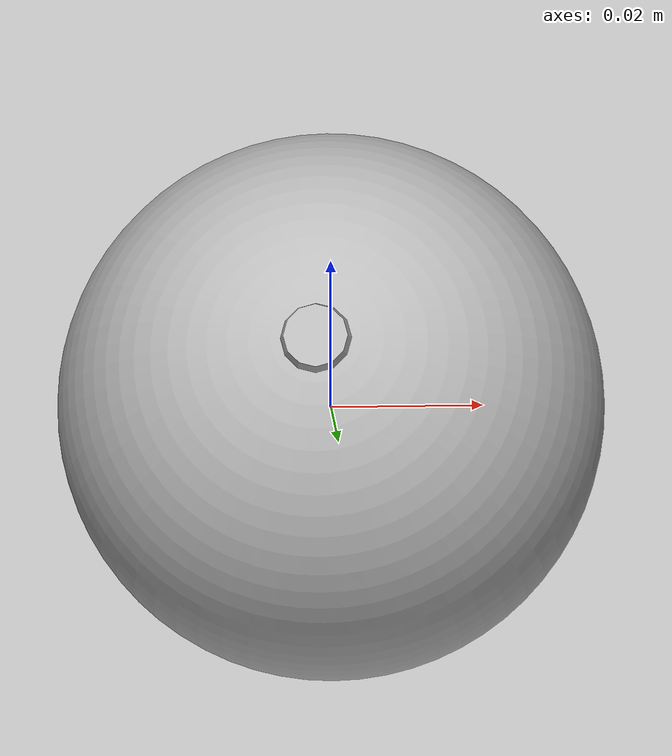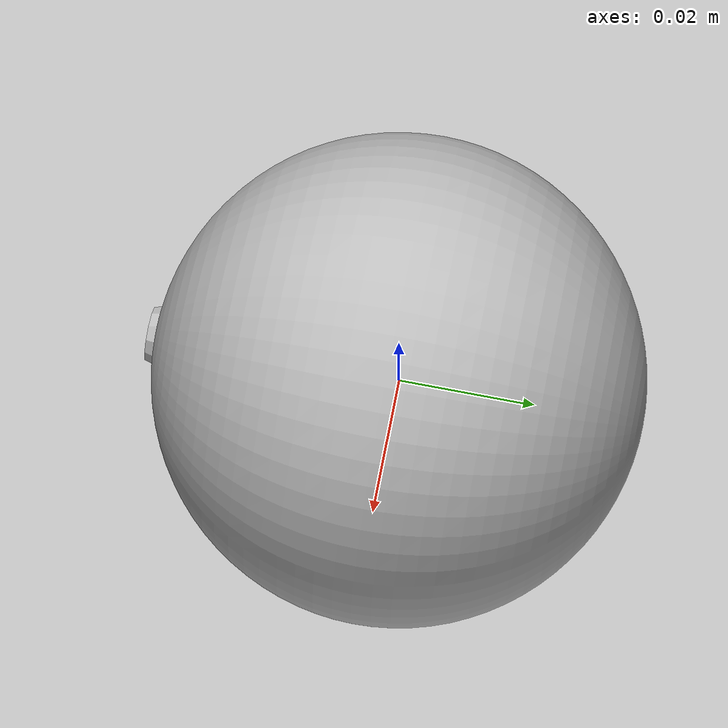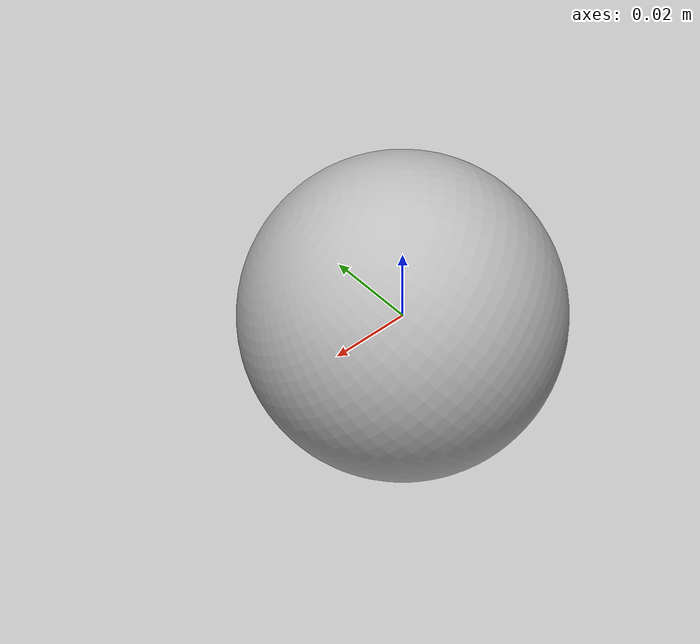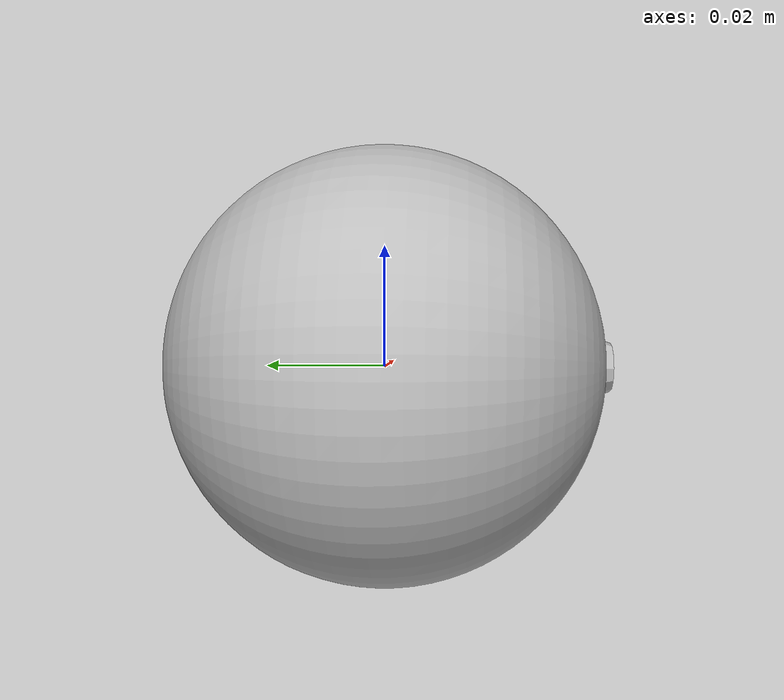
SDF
<?xml version="1.0"?>
<sdf version="1.6">
  <model name="orange">
    <link name="body">
      <gravity>0</gravity>
      <inertial>
        <mass>0.05</mass>
        <inertia>
          <ixx>2.45e-5</ixx>
          <iyy>2.45e-5</iyy>
          <izz>2.45e-5</izz>
          <ixy>0</ixy>
          <ixz>0</ixz>
          <iyz>0</iyz>
        </inertia>
      </inertial>

      <collision name="body_collision">
        <geometry>
          <sphere>
            <radius>0.03</radius>
          </sphere>
        </geometry>
      </collision>

      <visual name="visual">
        <pose>0 0 0 1.57079632679 -0 0</pose>
        <geometry>
          <mesh>
            <scale>1 1 1</scale>
            <uri>model://orange/meshes/orange.obj</uri>
          </mesh>
        </geometry>
      </visual>
    </link>
  </model>
</sdf>
